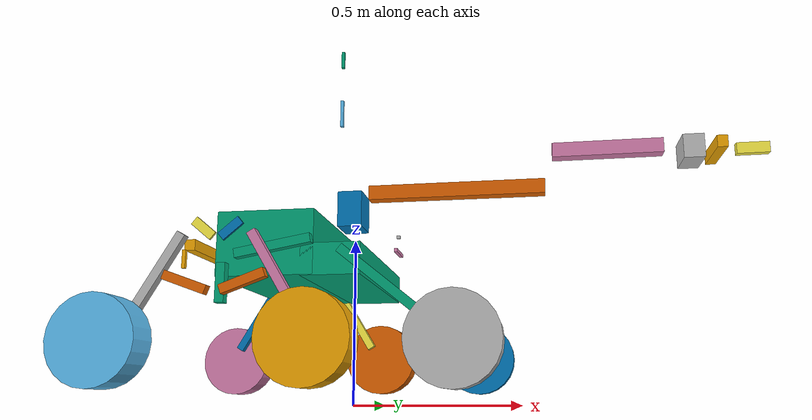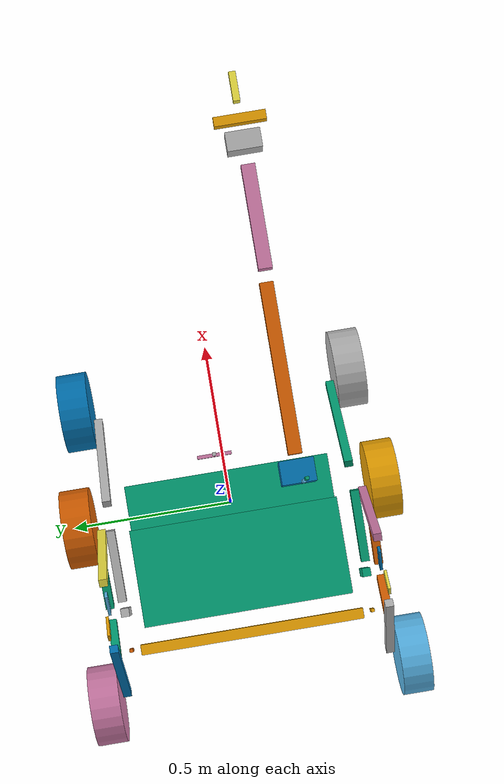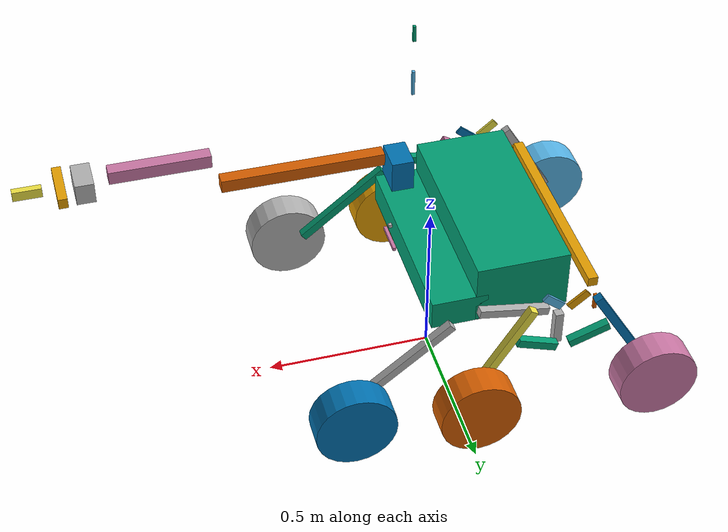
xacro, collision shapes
<?xml version="1.0"?>
<robot xmlns:xacro="http://www.ros.org/wiki/xacro" name="rover">

  <!-- Constants -->

  <xacro:property name="base_width" value="0.59812"/>
  <xacro:property name="base_len" value="0.478"/>
  <xacro:property name="base_height" value="0.183"/>
  <xacro:property name="wheel_radius" value="0.12"/>
  <xacro:property name="wheel_width" value="0.09"/>
  <xacro:property name="wheel_mass" value="3"/>
  <xacro:property name="chassis_mass" value="15"/>
  <xacro:property name="wheel_torque" value="2.68"/>

  <xacro:property name="TAU" value="6.2831855"/>

  <!-- Inertial Macros-->

  <xacro:macro name="cylinder_inertia" params="m r h">
    <inertial>
      <mass value="${m}"/>
      <inertia ixx="${m*(3*r*r+h*h)/12}" ixy="0" ixz="0"
               iyy="${m*(3*r*r+h*h)/12}" iyz="0"
               izz="${m*r*r/2}"/>
    </inertial>
  </xacro:macro>

  <xacro:macro name="box_inertia" params="m d w h">
    <inertial>
      <mass value="${m}"/>
      <inertia ixx="${m / 12.0 * (w*w + h*h)}" ixy="0" ixz="0"
               iyy="${m / 12.0 * (d*d + h*h)}" iyz="0"
               izz="${m / 12.0 * (d*d + w*w)}"/>
    </inertial>
  </xacro:macro>

  <xacro:macro name="sphere_inertia" params="m r">
    <inertial>
      <mass value="${m}"/>
      <inertia ixx="${2.0*m*(r*r)/5.0}" ixy="0" ixz="0"
               iyy="${2.0*m*(r*r)/5.0}" iyz="0"
               izz="${2.0*m*(r*r)/5.0}"/>
    </inertial>
  </xacro:macro>

  <!-- Joints/Links Macros -->

  <xacro:macro name="arm_link" params="name m x y z dx:=0 dz:=0">
    <link name="arm_${name}_link">
      <xacro:box_inertia m="${m}" d="${y}" w="${x}" h="${z}"/>
      <visual>
        <geometry>
          <mesh filename="package://mrover/urdf/meshes/arm_${name}.fbx"/>
        </geometry>
      </visual>
      <collision>
        <origin xyz="${x / 2 + dx} 0 ${dz}"/>
        <geometry>
          <box size="${x * 0.85} ${y} ${z}"/>
        </geometry>
      </collision>
    </link>
  </xacro:macro>

  <xacro:macro name="arm_revolute_joint" params="parent child x y z lower upper">
    <joint name="${parent}_link_to_${child}_link" type="revolute">
      <origin xyz="${x} ${y} ${z}"/>
      <parent link="${parent}_link"/>
      <child link="${child}_link"/>
      <axis xyz="0 1 0"/>
      <limit lower="${lower}" upper="${upper}" effort="0" velocity="0"/>
    </joint>
  </xacro:macro>

  <xacro:macro name="wheel" params="pos side reflect">
    <link name="${pos}_${side}_wheel_link">
      <xacro:cylinder_inertia m="${wheel_mass}" r="${wheel_radius}" h="${wheel_width}"/>
      <visual>
        <geometry>
          <mesh filename="package://mrover/urdf/meshes/rover_${side}_wheel.fbx"/>
        </geometry>
      </visual>
      <collision>
      <origin xyz="0 0 ${reflect * -0.03}"/>
        <geometry>
          <cylinder length="${wheel_width}" radius="${wheel_radius}"/>
        </geometry>
      </collision>
    </link>
  </xacro:macro>

  <!-- creates a collider that extends like a ray of some length at some angle (by default) -->
  <xacro:macro name="suspension_collider" params="length width:=0.025 height:=0.025 angle dx:=0 dy:=0 dz:=0">
    <collision>
      <origin xyz="${length * cos(angle)/2 + dx} ${length * sin(angle)/2 + dy} ${dz}" rpy="0 0 ${angle}"/>
      <geometry>
        <box size="${length * 0.75} ${width} ${height}"/>
      </geometry>
    </collision>
  </xacro:macro>

  <xacro:macro name="wheels" params="side reflect">
    <xacro:wheel pos="front" side="${side}" reflect="${reflect}"/>
    <xacro:wheel pos="center" side="${side}" reflect="${reflect}"/>
    <xacro:wheel pos="back" side="${side}" reflect="${reflect}"/>

    <link name="${side}_rocker_link">
      <xacro:box_inertia m="3" d="0.5" w="0.5" h="0.5"/>
      <visual>
        <geometry>
          <mesh filename="package://mrover/urdf/meshes/rover_${side}_rocker.fbx"/>
        </geometry>
      </visual>
      <xacro:suspension_collider length="0.44752" angle="0.68068" dz="${reflect * 0.06}"/>
      <xacro:suspension_collider length="0.281575" angle="2.96706" dz="${reflect * 0.06}"/>
      <xacro:suspension_collider length="0.14239" angle="${pi/2}"
                                dx="-0.277297"
                                dy="0.048894"
                                dz="${reflect * 0.06}"/>
    </link>

    <link name="${side}_lambda_crank_rear_link">
      <xacro:box_inertia m="3" d="0.1" w="0.1" h="0.1"/>
      <visual>
        <geometry>
          <mesh filename="package://mrover/urdf/meshes/rover_rear_lambda_crank.fbx"/>
        </geometry>
      </visual>
      <xacro:suspension_collider length="0.09187"
                                 angle="3.832795"
                                 height="0.008"/>
    </link>

    <link name="${side}_lambda_crank_front_link">
      <xacro:box_inertia m="3" d="0.1" w="0.1" h="0.1"/>
      <visual>
        <geometry>
          <mesh filename="package://mrover/urdf/meshes/rover_front_lambda_crank.fbx"/>
        </geometry>
      </visual>
      <xacro:suspension_collider length="0.09187"
                                 angle="-0.691203"
                                 height="0.008"/>
    </link>

    <link name="${side}_lambda_lower_link">
      <xacro:box_inertia m="2" d="0.5" w="0.5" h="0.5"/>
      <visual>
        <geometry>
          <mesh filename="package://mrover/urdf/meshes/rover_${side}_lambda_lower.fbx"/>
        </geometry>
      </visual>
      <xacro:suspension_collider length="0.16767" angle="-0.349066" dz="${reflect * 0.05}"/>
      <xacro:suspension_collider length="0.16767" angle="3.490659" dz="${reflect * 0.05}"/>
    </link>

    <link name="${side}_lambda_front_link">
      <xacro:box_inertia m="2" d="0.5" w="0.5" h="0.5"/>
      <visual>
        <geometry>
          <mesh filename="package://mrover/urdf/meshes/rover_${side}_lambda_front.fbx"/>
        </geometry>
      </visual>
      <xacro:suspension_collider length="0.38313" angle="1.027493"
                                 dx="-0.086680"
                                 dy="-0.143526"/>
    </link>

    <link name="${side}_lambda_rear_link">
      <xacro:box_inertia m="2" d="0.5" w="0.5" h="0.5"/>
      <visual>
        <geometry>
          <mesh filename="package://mrover/urdf/meshes/rover_${side}_lambda_rear.fbx"/>
        </geometry>
      </visual>
      <xacro:suspension_collider length="0.38313" angle="2.114100"
                                 dx="0.086680"
                                 dy="-0.143526"/>
    </link>

    <link name="${side}_diff_bar_connector_link">
      <xacro:box_inertia m="0.5" d="0.1" w="0.1" h="0.1"/>
      <visual>
        <geometry>
          <mesh filename="package://mrover/urdf/meshes/rover_diff_bar_connector.fbx"/>
        </geometry>
      </visual>
      <collision>
        <origin xyz="0 0 -0.04605"/>
        <geometry>
          <box size="0.01 0.01 0.05"/>
        </geometry>
      </collision>
    </link>

    <!-- this link is needed to get a 2 dof rotational joint -->
    <link name="${side}_diff_bar_connector_x_link"/>

    <joint name="chassis_link_to_${side}_rocker_link" type="continuous">
      <parent link="chassis_link"/>
      <child link="${side}_rocker_link"/>
      <origin xyz="0.0 ${reflect * (base_width/2)} 0" rpy="${-TAU/4} 0 0"/>
      <axis xyz="0 0 1"/>
      <limit effort="0" velocity="0"/>
    </joint>

    <joint name="${side}_rocker_link_to_front_${side}_wheel_link" type="continuous">
      <parent link="${side}_rocker_link"/>
      <child link="front_${side}_wheel_link"/>
      <origin xyz="0.34781 0.28163 ${reflect * 0.15235}"/>
      <axis xyz="0 0 1"/>
      <limit effort="${wheel_torque}" velocity="0"/>
    </joint>

    <joint name="${side}_lambda_front_link_to_center_${side}_wheel_link" type="continuous">
      <parent link="${side}_lambda_front_link"/>
      <child link="center_${side}_wheel_link"/>
      <origin xyz="0.11343 0.18319 ${reflect * 0.09594}"/>
      <axis xyz="0 0 1"/>
      <limit effort="${wheel_torque}" velocity="0"/>
    </joint>

    <joint name="${side}_lambda_rear_link_to_back_${side}_wheel_link" type="continuous">
      <parent link="${side}_lambda_rear_link"/>
      <child link="back_${side}_wheel_link"/>
      <origin xyz="-0.11343 0.18319 ${reflect * 0.09594}"/>
      <axis xyz="0 0 1"/>
      <limit effort="${wheel_torque}" velocity="0"/>
    </joint>

    <joint name="${side}_rocker_link_to_${side}_lambda_lower_link" type="continuous">
      <parent link="${side}_rocker_link"/>
      <child link="${side}_lambda_lower_link"/>
      <origin xyz="-0.27730 0.15319 ${reflect * 0.05611}"/>
      <axis xyz="0 0 1"/>
      <limit effort="0" velocity="0"/>
    </joint>

    <joint name="${side}_rocker_link_to_${side}_lambda_crank_front_link" type="revolute">
      <parent link="${side}_rocker_link"/>
      <child link="${side}_lambda_crank_front_link"/>
      <origin xyz="-0.27730 0.01080 ${reflect * 0.09844}"/>
      <axis xyz="0 0 1"/>
      <limit upper="1.2" lower="-1.2" effort="0" velocity="0"/>
    </joint>

    <joint name="${side}_rocker_link_to_${side}_lambda_crank_rear_link" type="revolute">
      <parent link="${side}_rocker_link"/>
      <child link="${side}_lambda_crank_rear_link"/>
      <origin xyz="-0.27730 0.01080 ${reflect * 0.10795}"/>
      <axis xyz="0 0 1"/>
      <limit upper="1.2" lower="-1.2" effort="0" velocity="0"/>
    </joint>

    <joint name="${side}_lambda_lower_link_to_${side}_lambda_front_link" type="revolute">
      <parent link="${side}_lambda_lower_link"/>
      <child link="${side}_lambda_front_link"/>
      <origin xyz="0.15755 -0.05735 ${reflect * 0.04708}"/>
      <axis xyz="0 0 1"/>
      <limit upper="0.8" lower="-0.8" effort="0" velocity="0"/>
    </joint>

    <joint name="${side}_lambda_lower_link_to_${side}_lambda_rear_link" type="revolute">
      <parent link="${side}_lambda_lower_link"/>
      <child link="${side}_lambda_rear_link"/>
      <origin xyz="-0.15755 -0.05735 ${reflect * 0.04708}"/>
      <axis xyz="0 0 1"/>
      <limit lower="-0.8" upper="0.8" effort="0" velocity="0"/>
    </joint>

    <joint name="diff_bar_link_to_${side}_diff_bar_connector_x_link" type="continuous">
      <parent link="diff_bar_link"/>
      <child link="${side}_diff_bar_connector_x_link"/>
      <origin xyz="-0.01143 ${reflect * 0.35547} 0" rpy="0 0 0"/>
      <axis xyz="1 0 0"/>
    </joint>

    <joint name="${side}_diff_bar_connector_x_link_to_${side}_diff_bar_connector_link" type="continuous">
      <parent link="${side}_diff_bar_connector_x_link"/>
      <child link="${side}_diff_bar_connector_link"/>
      <origin xyz="0 0 0" rpy="0 0 0"/>
      <axis xyz="0 1 0"/>
    </joint>
  </xacro:macro>

  <link name="diff_bar_link">
    <xacro:box_inertia m="1" d="0.1" w="0.1" h="0.1"/>
    <visual>
      <geometry>
        <mesh filename="package://mrover/urdf/meshes/rover_diff_bar.fbx"/>
      </geometry>
    </visual>
    <collision>
      <origin xyz="-0.013 0 0"/>
      <geometry>
        <box size="0.03 0.65 0.03"/>
      </geometry>
    </collision>
  </link>

  <joint name="chassis_link_to_diff_bar_link" type="continuous">
    <parent link="chassis_link"/>
    <child link="diff_bar_link"/>
    <origin xyz="-0.37633 0 -0.00587"/>
    <axis xyz="1 0 0"/>
  </joint>

  <!-- Joints/Links -->

  <link name="base_link"/>

  <link name="chassis_link">
    <xacro:box_inertia m="${chassis_mass}" d="${base_len}" w="${base_width}" h="${base_height}"/>
    <visual>
      <geometry>
        <mesh filename="package://mrover/urdf/meshes/rover_chassis.fbx"/>
      </geometry>
    </visual>
    <collision>
      <origin xyz="-0.185906 0 0"/>
      <geometry>
        <box size="0.277 ${base_width} ${base_height}"/>
      </geometry>
    </collision>
    <collision>
      <origin xyz="0.0 0 -0.049449"/>
      <geometry>
        <box size="0.167 ${base_width} 0.0891 "/>
      </geometry>
    </collision>
  </link>

  <link name="arm_base_link"/>

  <!-- TODO: recalculate -->
  <joint name="base_link_to_arm_base_link" type="fixed">
    <origin xyz="0.199228 -0.200235 0.540196"/>
    <parent link="base_link"/>
    <child link="arm_base_link"/>
  </joint>

  <joint name="base_link_to_chassis_link" type="fixed">
    <origin xyz="0 0 0.439675"/>
    <parent link="base_link"/>
    <child link="chassis_link"/>
  </joint>

  <xacro:arm_link name="a" m="1" x="0.08" y="0.1" z="0.1"/>
  <xacro:arm_link name="b" m="1" x="0.58" y="0.04" z="0.04"/>
  <xacro:arm_link name="c" m="1" x="0.35" y="0.04" z="0.04" dz="0.1"/>
  <xacro:arm_link name="d" m="1" x="0.065" y="0.1" z="0.065" dx="-0.0325"/>
  <xacro:arm_link name="e" m="1" x="0.032" y="0.15" z="0.032" dx="0.05"/>
  <xacro:arm_link name="la_base" m="0.1" x="0.01" y="0.01" z="0.08" dz="0.1"/>
  <xacro:arm_link name="la_piston" m="0.1" x="0.01" y="0.01" z="0.05" dz="-0.05"/>
  <!-- TODO: figure out why this is cooked -->
  <link name="arm_gripper_link">
    <xacro:box_inertia m="1" d="0.02" w="0.13" h="0.03"/>
    <visual>
      <geometry>
        <mesh filename="package://mrover/urdf/meshes/arm_gripper.fbx"/>
      </geometry>
    </visual>
    <collision>
      <origin xyz="0.075 0 0"/>
      <geometry>
        <box size="0.085 0.02 0.03"/>
      </geometry>
    </collision>
  </link>

  <joint name="chassis_link_to_arm_a_link" type="prismatic">
    <origin xyz="0.0 -0.200235 0.10011"/>
    <parent link="chassis_link"/>
    <child link="arm_a_link"/>
    <axis xyz="0 1 0"/>
    <limit lower="0" upper="0.4" effort="0" velocity="0"/>
  </joint>

  <xacro:arm_revolute_joint parent="arm_a" child="arm_b"
                            x="0.04452" y="0" z="0.05163"
                            lower="-1.1344" upper="0.2617"/>
  <xacro:arm_revolute_joint parent="arm_b" child="arm_c"
                            x="0.53271" y="0" z="0"
                            lower="-1.0471" upper="3.0543"/>
  <xacro:arm_revolute_joint parent="arm_c" child="arm_d"
                            x="0.39525" y="0" z="0.08329"
                            lower="-1.1344" upper="1.1344"/>
  <xacro:arm_revolute_joint parent="arm_a" child="arm_la_base"
                            x="-0.00441" y="0" z="0.20149"
                            lower="0" upper="2"/>

  <joint name="arm_d_link_to_arm_e_link" type="revolute">
    <origin xyz="0 0 0"/>
    <parent link="arm_d_link"/>
    <child link="arm_e_link"/>
    <axis xyz="1 0 0"/>
    <limit lower="-2.35619" upper="2.35619" effort="0" velocity="0"/>
  </joint>

  <joint name="arm_e_link_to_arm_gripper_link" type="prismatic">
    <origin xyz="0.08375 0.0 0.0"/>
    <parent link="arm_e_link"/>
    <child link="arm_gripper_link"/>
    <axis xyz="0 1 0"/>
    <limit lower="0" upper="0.088" effort="0" velocity="0"/>
  </joint>

  <joint name="arm_la_base_link_to_arm_la_piston_link" type="prismatic">
    <origin xyz="0.0 0.0 0.32"/>
    <parent link="arm_la_base_link"/>
    <child link="arm_la_piston_link"/>
    <axis xyz="0 0 1"/>
    <limit lower="0" upper="0.25" effort="0" velocity="0"/>
  </joint>

  <xacro:wheels side="left" reflect="1"/>
  <xacro:wheels side="right" reflect="-1"/>

  <joint name="chassis_link_to_left_gps" type="fixed">
    <origin xyz="0 0.1 0"/>
    <parent link="chassis_link"/>
    <child link="left_gps"/>
  </joint>

  <link name="left_gps"/>

  <joint name="chassis_link_to_right_gps" type="fixed">
    <origin xyz="0 -0.1 0"/>
    <parent link="chassis_link"/>
    <child link="right_gps"/>
  </joint>

  <link name="right_gps"/>

  <joint name="chassis_link_to_center_gps" type="fixed">
    <origin xyz="0 0 1"/>
    <parent link="chassis_link"/>
    <child link="center_gps"/>
  </joint>

  <link name="center_gps"/>

  <joint name="chassis_link_to_imu" type="fixed">
    <origin xyz="0 0 0"/>
    <parent link="chassis_link"/>
    <child link="imu"/>
  </joint>

  <link name="imu"/>

  <!-- TODO(quintin): Import the ZED URDF here -->

  <joint name="chassis_link_to_zed_left_camera_frame" type="fixed">
    <origin xyz="0.13 0.025 0.025"/>
    <parent link="chassis_link"/>
    <child link="zed_left_camera_frame"/>
  </joint>

  <link name="zed_left_camera_frame">
    <collision>
      <geometry>
        <box size="0.01 0.1 0.01"/>
      </geometry>
    </collision>
  </link>
gg  <joint name="chassis_link_to_long_range_camera_link" type="fixed">
    <origin xyz="0.13 0.025 0.075"/>
    <parent link="chassis_link"/>
    <child link="long_range_camera_link"/>
  </joint>

  <link name="long_range_camera_link">
    <collision>
      <geometry>
        <box size="0.01 0.01 0.01"/>
      </geometry>
    </collision>
  </link>

  <joint name="arm_e_link_to_finger_camera" type="fixed">
    <origin xyz="0 0 0" rpy="0 0 0"/>
    <parent link="arm_e_link"/>
    <child link="finger_camera_frame"/>
  </joint>

  <link name="finger_camera_frame"/>

  <!-- TODO(quintin): I removed this for now, feel free to add it back when needed -->

</robot>
